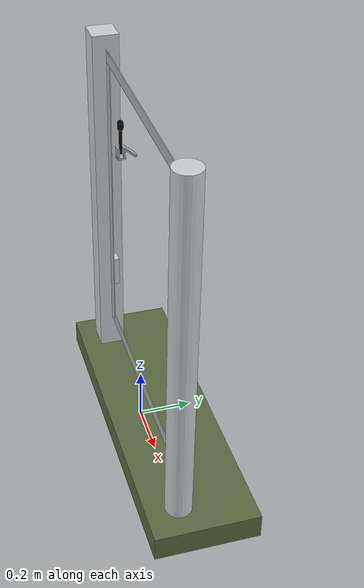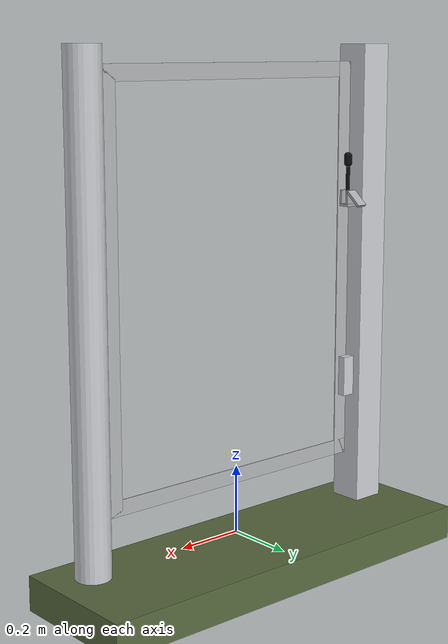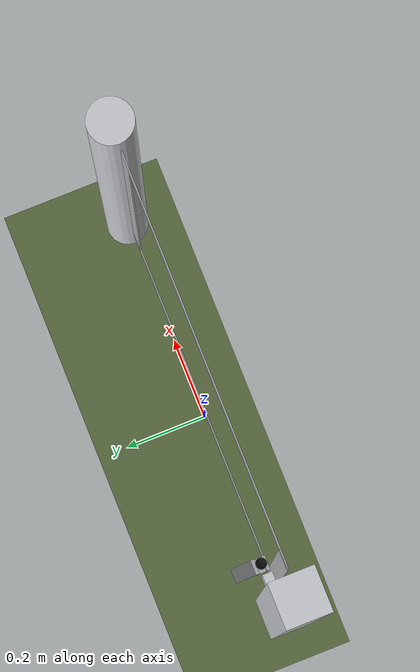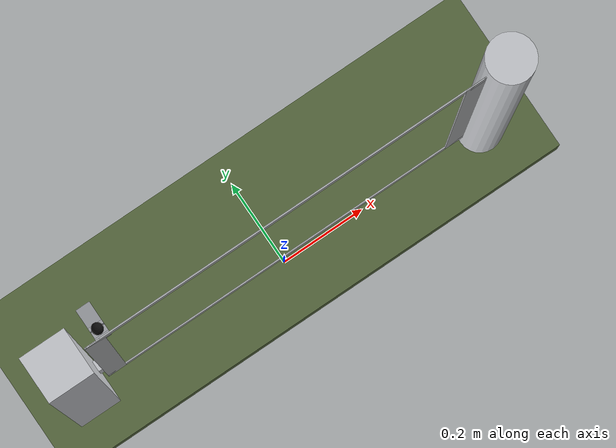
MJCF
<?xml version="1.0" ?>
<mujoco model="db0014_gate_swing_minimal">
  <compiler angle="radian" meshdir="../../hardware" texturedir="../../textures" autolimits="true" inertiafromgeom="false"/>
  <option timestep="0.002" integrator="implicitfast" cone="elliptic" impratio="10" noslip_iterations="3">
    <flag multiccd="enable"/>
  </option>
  <size memory="16M"/>
  <default>
    <geom condim="4" solref="0.005 1" solimp="0.95 0.99 0.001"/>
    <joint solreflimit="0.005 1" solimplimit="0.95 0.99 0.001"/>
    <tendon solreflimit="0.005 1"/>
    <equality solref="0.002 1"/>
  </default>
  <visual>
    <headlight ambient="0.4 0.4 0.4" diffuse="0.7 0.7 0.7" specular="0.2 0.2 0.2"/>
    <quality shadowsize="4096"/>
    <map znear="0.01" zfar="60"/>
  </visual>
  <asset>
    <material name="mat_floor" rgba="0.35 0.42 0.25 1" specular="0.2" shininess="0.15" reflectance="0"/>
    <material name="mat_wall" rgba="0.78 0.76 0.7 1" specular="0.2" shininess="0.1" reflectance="0"/>
    <material name="mat_leaf" rgba="0.7 0.71 0.72 1" specular="0.74" shininess="0.5" reflectance="0.36"/>
    <material name="mat_hinge" rgba="0.65 0.66 0.68 1" specular="0.74" shininess="0.5" reflectance="0.36"/>
    <material name="mat_op_black_matte_metal" rgba="0.05 0.05 0.05 1" specular="0.38" shininess="0.3" reflectance="0.12"/>
    <material name="mat_keeper" rgba="0.65 0.66 0.68 1" specular="0.74" shininess="0.5" reflectance="0.36"/>
    <material name="mat_frame" rgba="0.8 0.81 0.83 1" specular="0.8" shininess="0.6" reflectance="0.4"/>
    <material name="mat_bumper_stop" rgba="0.08 0.08 0.08 1" specular="0.2" shininess="0.1" reflectance="0"/>
    <material name="mat_stop_base" rgba="0.9 0.9 0.92 1" specular="0.8" shininess="0.9" reflectance="0.4"/>
    <material name="mat_fence_mesh" rgba="0.6 0.62 0.64 0.5" specular="0.68" shininess="0.3" reflectance="0.1"/>
    <texture name="skybox" type="skybox" builtin="gradient" rgb1="0.6 0.7 0.85" rgb2="0.9 0.92 0.95" width="256" height="256"/>
  </asset>
  <worldbody>
    <light name="sun" pos="1.5 -2.5 4" dir="-0.3 0.5 -0.8" directional="true" diffuse="0.8 0.8 0.8" specular="0.3 0.3 0.3" castshadow="true"/>
    <light name="fill" pos="-1.5 2.5 3" dir="0.3 -0.5 -0.7" directional="true" diffuse="0.35 0.35 0.4" castshadow="false"/>
    <camera name="robot_view" pos="0 -1.875 1.135" xyaxes="1 0 0 0 0.26963 0.962964" fovy="52"/>
    <camera name="far_view" pos="0 1.875 1.135" xyaxes="-1 0 0 0 -0.26963 0.962964" fovy="52"/>
    <camera name="iso" pos="-1.425 -1.575 1.435" xyaxes="0.741536 -0.670913 0 0.242917 0.268487 0.932151" fovy="46"/>
    <camera name="detail_handle" pos="-0.227 -0.7635 1.345" xyaxes="0.97561 0.219512 0 -0.070934 0.315262 0.94635" fovy="38"/>
    <geom name="floor" type="box" size="6 6 0.05" pos="0 0 -0.05" material="mat_floor" group="0" contype="1" conaffinity="1" friction="0.8 0.005 0.0001" density="2400"/>
    <geom name="post_hinge" type="cylinder" size="0.05 0.7" pos="0.506 0 0.7" material="mat_frame" group="0" contype="1" conaffinity="1" friction="0.6 0.005 0.0001" density="800"/>
    <geom name="post_latch" type="box" size="0.05 0.05 0.7" pos="-0.506 0 0.7" material="mat_frame" group="0" contype="1" conaffinity="1" friction="0.6 0.005 0.0001" density="800"/>
    <geom name="gate_stop" type="box" size="0.02 0.012 0.06" pos="-0.436 0.0135 0.4" material="mat_frame" group="0" contype="1" conaffinity="1" friction="0.6 0.005 0.0001" density="800"/>
    <site name="approach_point" pos="0 -1.5 0" quat="1 0 0 0" size="0.05" rgba="0.2 0.9 0.2 0.5" group="4"/>
    <site name="goal_point" pos="0 1.5 0" quat="1 0 0 0" size="0.05" rgba="0.2 0.9 0.2 0.5" group="4"/>
    <site name="door_plane_center" pos="0 0 0.61" quat="1 0 0 0" size="0.02" rgba="0.2 0.9 0.2 0.5" group="4"/>
    <body name="leaf" pos="0.456 0 0">
      <inertial pos="-0.501818 0.005838 0.773754" mass="6.215232" quat="0.552805 0.560374 0.427033 -0.445006" diaginertia="0.467975698 0.697947886 1.162923801"/>
      <joint name="leaf_hinge" type="hinge" axis="0 0 1" pos="-0.003 -0.05 0" limited="true" range="0 1.570796" damping="8.14219" frictionloss="4.229279" stiffness="5" springref="-1.099612" armature="0.02"/>
      <geom name="leaf_slab_col" type="box" size="0.45 0.0015 0.6" pos="-0.453 0 0.75" material="mat_leaf" group="3" contype="1" conaffinity="1" rgba="0.8 0.3 0.3 0.25" friction="0.45 0.005 0.0001" density="1"/>
      <geom name="leaf_rail_b" type="box" size="0.45 0.0015 0.0225" pos="-0.453 0 0.1725" material="mat_leaf" group="1" contype="0" conaffinity="0" density="1"/>
      <geom name="leaf_rail_t" type="box" size="0.45 0.0015 0.0225" pos="-0.453 0 1.3275" material="mat_leaf" group="1" contype="0" conaffinity="0" density="1"/>
      <geom name="leaf_stile_h" type="box" size="0.0225 0.0015 0.6" pos="-0.0255 0 0.75" material="mat_leaf" group="1" contype="0" conaffinity="0" density="1"/>
      <geom name="leaf_stile_l" type="box" size="0.0225 0.0015 0.6" pos="-0.8805 0 0.75" material="mat_leaf" group="1" contype="0" conaffinity="0" density="1"/>
      <geom name="leaf_cup_n" type="box" size="0.016 0.004 0.02" pos="-0.863 0.0245 0.955" material="mat_keeper" group="0" contype="1" conaffinity="1" friction="0.6 0.005 0.0001" density="7800"/>
      <geom name="leaf_cup_p" type="box" size="0.016 0.004 0.02" pos="-0.863 0.0485 0.955" material="mat_keeper" group="0" contype="1" conaffinity="1" friction="0.6 0.005 0.0001" density="7800"/>
      <geom name="leaf_cup_b" type="box" size="0.016 0.016 0.004" pos="-0.863 0.0365 0.931" material="mat_keeper" group="0" contype="1" conaffinity="1" friction="0.6 0.005 0.0001" density="7800"/>
      <geom name="leaf_cup_ramp" type="box" size="0.016 0.0301 0.004" pos="-0.863 0.072344 0.952012" quat="0.934722 -0.355381 0 0" material="mat_keeper" group="0" contype="1" conaffinity="1" friction="0.12 0.005 0.0001" density="7800"/>
      <site name="leaf_edge_mid" pos="-0.903 0 0.6" quat="1 0 0 0" size="0.02" rgba="0.2 0.9 0.2 0.5" group="4"/>
    </body>
    <body name="leaf_pin" pos="-0.407 0.0365 1">
      <inertial pos="0 0 0.037519" mass="0.228168" quat="0.707107 0 0.707107 0" diaginertia="0.000010167 0.000346413 0.000346413"/>
      <joint name="leaf_pin_slide" type="slide" axis="0 0 1" limited="true" range="0 0.06" damping="9.526824" frictionloss="0.25" stiffness="60" springref="-0.016667" armature="0.15"/>
      <geom name="leaf_pin_geom" type="capsule" size="0.006 0.0525" pos="0 0 0.0025" material="mat_op_black_matte_metal" group="0" contype="1" conaffinity="1" friction="0.6 0.005 0.0001" density="7850"/>
      <geom name="leaf_pin_knob" type="capsule" size="0.012 0.01" pos="0 0 0.065" material="mat_op_black_matte_metal" group="0" contype="1" conaffinity="1" friction="0.6 0.005 0.0001" density="7850"/>
      <site name="leaf_grip_pin" pos="0 0 0.065" quat="1 0 0 0" size="0.012" rgba="0.2 0.9 0.2 0.5" group="4"/>
    </body>
  </worldbody>
  <sensor>
    <jointpos name="leaf_hinge_pos" joint="leaf_hinge"/>
    <jointvel name="leaf_hinge_vel" joint="leaf_hinge"/>
    <jointpos name="leaf_pin_slide_pos" joint="leaf_pin_slide"/>
    <jointvel name="leaf_pin_slide_vel" joint="leaf_pin_slide"/>
  </sensor>
</mujoco>
